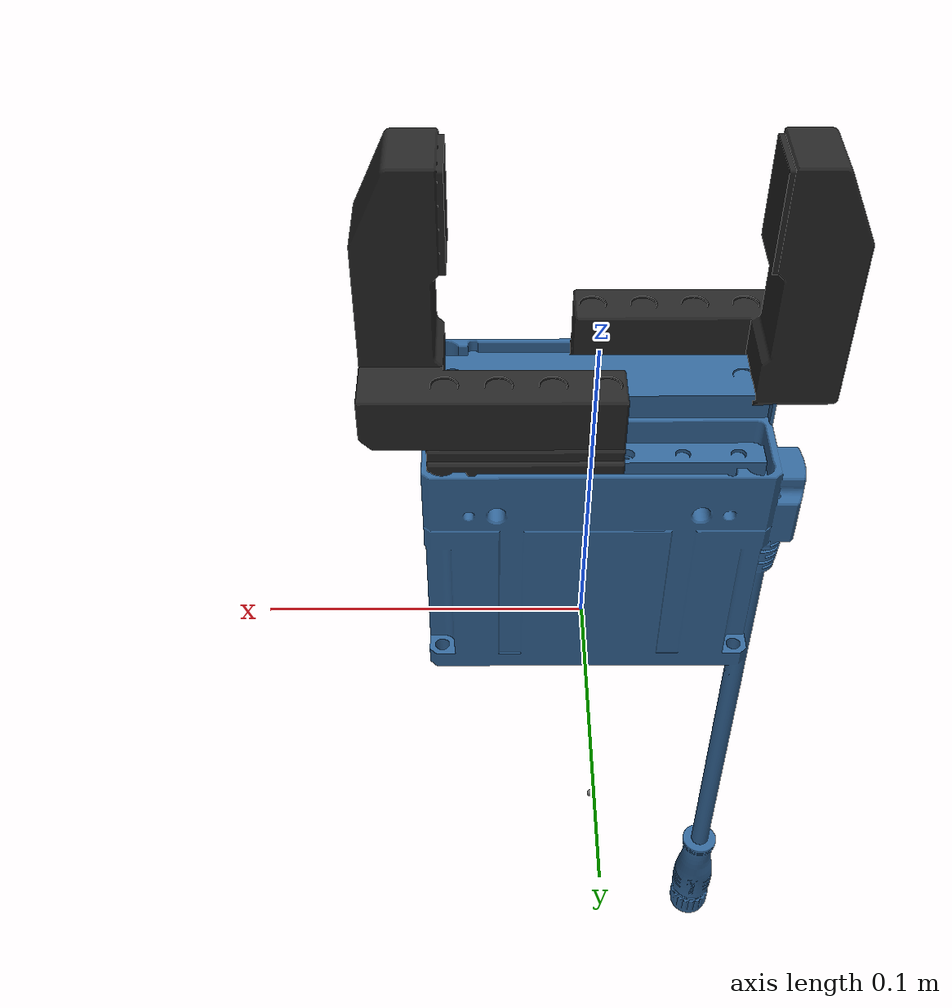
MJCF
<mujoco model="dhpgi80">
    <compiler angle="radian" autolimits="true" />
    <option impratio="10" cone="elliptic" />
    <!-- https://mujoco.readthedocs.io/en/stable/XMLreference.html?highlight=elliptic#option use
    elliptic cones for more realism -->
    <default>
        <default class="visual">
            <geom type="mesh" contype="0" conaffinity="0" group="2" />
        </default>
        <default class="collision">
            <geom type="mesh" group="3" />
        </default>
        <default class="finger_collision">
            <geom condim="6" friction="0.9 0.1 0.1" group="3" priority="1" />
        </default>
    </default>

    <asset>
        <material name="metal" rgba="0.2 0.4 0.6 1" reflectance="1" />
        <material name="finger" rgba="0.149 0.149 0.149 1" reflectance="1" />
        <mesh name="base" file="meshes/base.stl" />
        <mesh name="finger" file="meshes/finger.stl" />
    </asset>
    <worldbody>
        <body name="base">
            <site name="cam_mount" size="0.001" group="2"
                pos="0 0.065 -0.01" />

            <geom mesh="base" type="mesh" class="visual" mass="1.0" material="metal"
                pos="0 0 0.007" quat="0 0 0 1" />
            <geom size="0.095 0.062 0.093" type="box" class="collision" pos="0 0 0.0465" />

            <body name="right_finger" pos="0 0 0" euler="0 0 3.141592653">
                <joint name="right_driver_joint" range="-0.04 0.0"
                    type="slide" axis="-1 0 0" />
                <geom mesh="finger" type="mesh" class="visual" mass="0.1" material="finger" />
                <geom mesh="finger" type="mesh" class="collision" />
            </body>
            <body name="left_finger" pos="0 0 0" euler="0 0 0">
                <joint name="left_driver_joint" range="-0.04 0.0"
                    type="slide" axis="-1 0 0" />
                <geom mesh="finger" type="mesh" class="visual" mass="0.1" material="finger" />
                <geom mesh="finger" type="mesh" class="collision" />
            </body>
            <site name="end_effector" group="3" pos="0 0 0.175" />
        </body>
    </worldbody>

    <equality>
        <joint joint1="right_driver_joint" joint2="left_driver_joint"
            solimp="0.8 0.85 0.001" solref="0.005 1" />
    </equality>

    <actuator>
        <position name="gripper" kp="2000" forcerange="40 140" ctrlrange="-0.04 0"
            joint="right_driver_joint" />
    </actuator>
</mujoco>
